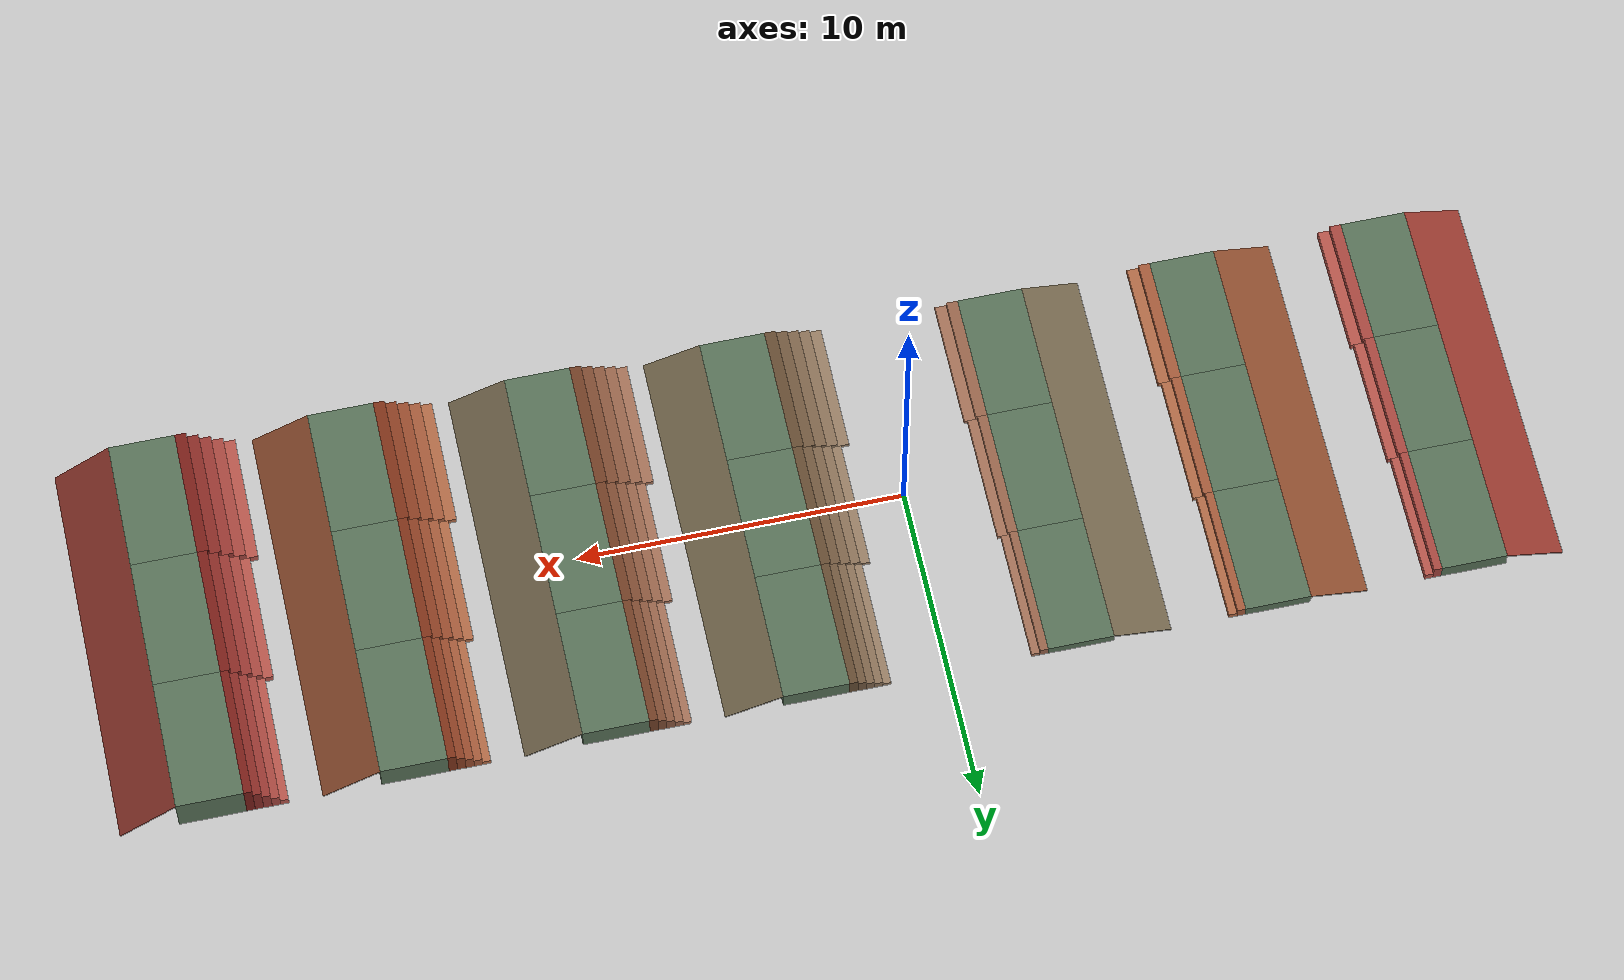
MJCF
<mujoco model="rough_terrain">

    <default>
        <default class="terrain">
            <geom contype="1" conaffinity="1" condim="3"
                  friction="1 0.01 0.01" group="0"/>
        </default>
    </default>

    <worldbody>
        <!-- ===== Rear two-step row 1: 0.15m rise per step ===== -->
        <body name="terrain_rear15_left" pos="-4.0 4.0 0">
            <geom name="stair_rear15_left_up_1" class="terrain"
                  type="box" size="0.125 2.0 0.075" pos="1.375 0 0.075"
                  rgba="0.65 0.45 0.35 1"/>
            <geom name="stair_rear15_left_up_2" class="terrain"
                  type="box" size="0.125 2.0 0.150" pos="1.125 0 0.150"
                  rgba="0.60 0.40 0.30 1"/>
            <geom name="stair_rear15_left_platform" class="terrain"
                  type="box" size="1.0 2.0 0.150" pos="0 0 0.150"
                  rgba="0.35 0.45 0.35 1"/>
        </body>

        <body name="terrain_rear15_mid" pos="-4.0 0 0">
            <geom name="stair_rear15_mid_up_1" class="terrain"
                  type="box" size="0.15 2.0 0.075" pos="1.45 0 0.075"
                  rgba="0.65 0.45 0.35 1"/>
            <geom name="stair_rear15_mid_up_2" class="terrain"
                  type="box" size="0.15 2.0 0.150" pos="1.15 0 0.150"
                  rgba="0.60 0.40 0.30 1"/>
            <geom name="stair_rear15_mid_platform" class="terrain"
                  type="box" size="1.0 2.0 0.150" pos="0 0 0.150"
                  rgba="0.35 0.45 0.35 1"/>
        </body>

        <body name="terrain_rear15_right" pos="-4.0 -4.0 0">
            <geom name="stair_rear15_right_up_1" class="terrain"
                  type="box" size="0.175 2.0 0.075" pos="1.525 0 0.075"
                  rgba="0.65 0.45 0.35 1"/>
            <geom name="stair_rear15_right_up_2" class="terrain"
                  type="box" size="0.175 2.0 0.150" pos="1.175 0 0.150"
                  rgba="0.60 0.40 0.30 1"/>
            <geom name="stair_rear15_right_platform" class="terrain"
                  type="box" size="1.0 2.0 0.150" pos="0 0 0.150"
                  rgba="0.35 0.45 0.35 1"/>
        </body>

        <body name="terrain_rear15_row_ramp" pos="-4.0 0 0">
            <geom name="ramp_rear15_row_down" class="terrain"
                  type="box" size="0.887764 6.0 0.025"
                  pos="-1.870776 0 0.125359"
                  quat="0.996399080 0 -0.084787220 0"
                  rgba="0.45 0.40 0.30 1"/>
        </body>

        <!-- ===== Rear two-step row 2: 0.18m rise per step ===== -->
        <body name="terrain_rear18_left" pos="-10.0 4.0 0">
            <geom name="stair_rear18_left_up_1" class="terrain"
                  type="box" size="0.125 2.0 0.090" pos="1.375 0 0.090"
                  rgba="0.70 0.42 0.28 1"/>
            <geom name="stair_rear18_left_up_2" class="terrain"
                  type="box" size="0.125 2.0 0.180" pos="1.125 0 0.180"
                  rgba="0.65 0.36 0.23 1"/>
            <geom name="stair_rear18_left_platform" class="terrain"
                  type="box" size="1.0 2.0 0.180" pos="0 0 0.180"
                  rgba="0.35 0.45 0.35 1"/>
        </body>

        <body name="terrain_rear18_mid" pos="-10.0 0 0">
            <geom name="stair_rear18_mid_up_1" class="terrain"
                  type="box" size="0.15 2.0 0.090" pos="1.45 0 0.090"
                  rgba="0.70 0.42 0.28 1"/>
            <geom name="stair_rear18_mid_up_2" class="terrain"
                  type="box" size="0.15 2.0 0.180" pos="1.15 0 0.180"
                  rgba="0.65 0.36 0.23 1"/>
            <geom name="stair_rear18_mid_platform" class="terrain"
                  type="box" size="1.0 2.0 0.180" pos="0 0 0.180"
                  rgba="0.35 0.45 0.35 1"/>
        </body>

        <body name="terrain_rear18_right" pos="-10.0 -4.0 0">
            <geom name="stair_rear18_right_up_1" class="terrain"
                  type="box" size="0.175 2.0 0.090" pos="1.525 0 0.090"
                  rgba="0.70 0.42 0.28 1"/>
            <geom name="stair_rear18_right_up_2" class="terrain"
                  type="box" size="0.175 2.0 0.180" pos="1.175 0 0.180"
                  rgba="0.65 0.36 0.23 1"/>
            <geom name="stair_rear18_right_platform" class="terrain"
                  type="box" size="1.0 2.0 0.180" pos="0 0 0.180"
                  rgba="0.35 0.45 0.35 1"/>
        </body>

        <body name="terrain_rear18_row_ramp" pos="-10.0 0 0">
            <geom name="ramp_rear18_row_down" class="terrain"
                  type="box" size="0.893322 6.0 0.025"
                  pos="-1.869963 0 0.155513"
                  quat="0.994859172 0 -0.101268098 0"
                  rgba="0.55 0.30 0.18 1"/>
        </body>

        <!-- ===== Rear two-step row 3: 0.25m rise per step ===== -->
        <body name="terrain_rear25_left" pos="-16.0 4.0 0">
            <geom name="stair_rear25_left_up_1" class="terrain"
                  type="box" size="0.125 2.0 0.125" pos="1.375 0 0.125"
                  rgba="0.72 0.34 0.30 1"/>
            <geom name="stair_rear25_left_up_2" class="terrain"
                  type="box" size="0.125 2.0 0.250" pos="1.125 0 0.250"
                  rgba="0.66 0.28 0.25 1"/>
            <geom name="stair_rear25_left_platform" class="terrain"
                  type="box" size="1.0 2.0 0.250" pos="0 0 0.250"
                  rgba="0.35 0.45 0.35 1"/>
        </body>

        <body name="terrain_rear25_mid" pos="-16.0 0 0">
            <geom name="stair_rear25_mid_up_1" class="terrain"
                  type="box" size="0.15 2.0 0.125" pos="1.45 0 0.125"
                  rgba="0.72 0.34 0.30 1"/>
            <geom name="stair_rear25_mid_up_2" class="terrain"
                  type="box" size="0.15 2.0 0.250" pos="1.15 0 0.250"
                  rgba="0.66 0.28 0.25 1"/>
            <geom name="stair_rear25_mid_platform" class="terrain"
                  type="box" size="1.0 2.0 0.250" pos="0 0 0.250"
                  rgba="0.35 0.45 0.35 1"/>
        </body>

        <body name="terrain_rear25_right" pos="-16.0 -4.0 0">
            <geom name="stair_rear25_right_up_1" class="terrain"
                  type="box" size="0.175 2.0 0.125" pos="1.525 0 0.125"
                  rgba="0.72 0.34 0.30 1"/>
            <geom name="stair_rear25_right_up_2" class="terrain"
                  type="box" size="0.175 2.0 0.250" pos="1.175 0 0.250"
                  rgba="0.66 0.28 0.25 1"/>
            <geom name="stair_rear25_right_platform" class="terrain"
                  type="box" size="1.0 2.0 0.250" pos="0 0 0.250"
                  rgba="0.35 0.45 0.35 1"/>
        </body>

        <body name="terrain_rear25_row_ramp" pos="-16.0 0 0">
            <geom name="ramp_rear25_row_down" class="terrain"
                  type="box" size="0.910014 6.0 0.025"
                  pos="-1.868132 0 0.225962"
                  quat="0.990334274 0 -0.138701212 0"
                  rgba="0.58 0.22 0.18 1"/>
        </body>

        <!-- ===== Middle row: 0.12m rise per step ===== -->
        <body name="terrain_mid_left" pos="4.0 4.0 0">
            <geom name="stair_mid_left_up_1" class="terrain"
                  type="box" size="0.125 2.0 0.06" pos="-2.125 0 0.06"
                  rgba="0.60 0.50 0.40 1"/>
            <geom name="stair_mid_left_up_2" class="terrain"
                  type="box" size="0.125 2.0 0.12" pos="-1.875 0 0.12"
                  rgba="0.55 0.45 0.35 1"/>
            <geom name="stair_mid_left_up_3" class="terrain"
                  type="box" size="0.125 2.0 0.18" pos="-1.625 0 0.18"
                  rgba="0.50 0.40 0.30 1"/>
            <geom name="stair_mid_left_up_4" class="terrain"
                  type="box" size="0.125 2.0 0.24" pos="-1.375 0 0.24"
                  rgba="0.45 0.35 0.25 1"/>
            <geom name="stair_mid_left_up_5" class="terrain"
                  type="box" size="0.125 2.0 0.30" pos="-1.125 0 0.30"
                  rgba="0.40 0.30 0.20 1"/>
            <geom name="stair_mid_left_platform" class="terrain"
                  type="box" size="1.0 2.0 0.30" pos="0 0 0.30"
                  rgba="0.35 0.45 0.35 1"/>
        </body>

        <body name="terrain_mid_mid" pos="4.0 0 0">
            <geom name="stair_mid_mid_up_1" class="terrain"
                  type="box" size="0.15 2.0 0.06" pos="-2.35 0 0.06"
                  rgba="0.60 0.50 0.40 1"/>
            <geom name="stair_mid_mid_up_2" class="terrain"
                  type="box" size="0.15 2.0 0.12" pos="-2.05 0 0.12"
                  rgba="0.55 0.45 0.35 1"/>
            <geom name="stair_mid_mid_up_3" class="terrain"
                  type="box" size="0.15 2.0 0.18" pos="-1.75 0 0.18"
                  rgba="0.50 0.40 0.30 1"/>
            <geom name="stair_mid_mid_up_4" class="terrain"
                  type="box" size="0.15 2.0 0.24" pos="-1.45 0 0.24"
                  rgba="0.45 0.35 0.25 1"/>
            <geom name="stair_mid_mid_up_5" class="terrain"
                  type="box" size="0.15 2.0 0.30" pos="-1.15 0 0.30"
                  rgba="0.40 0.30 0.20 1"/>
            <geom name="stair_mid_mid_platform" class="terrain"
                  type="box" size="1.0 2.0 0.30" pos="0 0 0.30"
                  rgba="0.35 0.45 0.35 1"/>
        </body>

        <body name="terrain_mid_right" pos="4.0 -4.0 0">
            <geom name="stair_mid_right_up_1" class="terrain"
                  type="box" size="0.175 2.0 0.06" pos="-2.575 0 0.06"
                  rgba="0.60 0.50 0.40 1"/>
            <geom name="stair_mid_right_up_2" class="terrain"
                  type="box" size="0.175 2.0 0.12" pos="-2.225 0 0.12"
                  rgba="0.55 0.45 0.35 1"/>
            <geom name="stair_mid_right_up_3" class="terrain"
                  type="box" size="0.175 2.0 0.18" pos="-1.875 0 0.18"
                  rgba="0.50 0.40 0.30 1"/>
            <geom name="stair_mid_right_up_4" class="terrain"
                  type="box" size="0.175 2.0 0.24" pos="-1.525 0 0.24"
                  rgba="0.45 0.35 0.25 1"/>
            <geom name="stair_mid_right_up_5" class="terrain"
                  type="box" size="0.175 2.0 0.30" pos="-1.175 0 0.30"
                  rgba="0.40 0.30 0.20 1"/>
            <geom name="stair_mid_right_platform" class="terrain"
                  type="box" size="1.0 2.0 0.30" pos="0 0 0.30"
                  rgba="0.35 0.45 0.35 1"/>
        </body>

        <body name="terrain_mid_row_ramp" pos="4.0 0 0">
            <geom name="ramp_mid_row_down" class="terrain"
                  type="box" size="0.925000 6.0 0.025"
                  pos="1.866892 0 0.276351"
                  quat="0.986393924 0 0.164398987 0"
                  rgba="0.45 0.40 0.30 1"/>
        </body>

        <!-- ===== Front row: 0.15m rise per step ===== -->
        <body name="terrain_front_left" pos="10.0 4.0 0">
            <geom name="stair_front_left_up_1" class="terrain"
                  type="box" size="0.125 2.0 0.075" pos="-2.125 0 0.075"
                  rgba="0.65 0.45 0.35 1"/>
            <geom name="stair_front_left_up_2" class="terrain"
                  type="box" size="0.125 2.0 0.150" pos="-1.875 0 0.150"
                  rgba="0.60 0.40 0.30 1"/>
            <geom name="stair_front_left_up_3" class="terrain"
                  type="box" size="0.125 2.0 0.225" pos="-1.625 0 0.225"
                  rgba="0.55 0.35 0.25 1"/>
            <geom name="stair_front_left_up_4" class="terrain"
                  type="box" size="0.125 2.0 0.300" pos="-1.375 0 0.300"
                  rgba="0.50 0.30 0.20 1"/>
            <geom name="stair_front_left_up_5" class="terrain"
                  type="box" size="0.125 2.0 0.375" pos="-1.125 0 0.375"
                  rgba="0.45 0.25 0.15 1"/>
            <geom name="stair_front_left_platform" class="terrain"
                  type="box" size="1.0 2.0 0.375" pos="0 0 0.375"
                  rgba="0.35 0.45 0.35 1"/>
        </body>

        <body name="terrain_front_mid" pos="10.0 0 0">
            <geom name="stair_front_mid_up_1" class="terrain"
                  type="box" size="0.15 2.0 0.075" pos="-2.35 0 0.075"
                  rgba="0.65 0.45 0.35 1"/>
            <geom name="stair_front_mid_up_2" class="terrain"
                  type="box" size="0.15 2.0 0.150" pos="-2.05 0 0.150"
                  rgba="0.60 0.40 0.30 1"/>
            <geom name="stair_front_mid_up_3" class="terrain"
                  type="box" size="0.15 2.0 0.225" pos="-1.75 0 0.225"
                  rgba="0.55 0.35 0.25 1"/>
            <geom name="stair_front_mid_up_4" class="terrain"
                  type="box" size="0.15 2.0 0.300" pos="-1.45 0 0.300"
                  rgba="0.50 0.30 0.20 1"/>
            <geom name="stair_front_mid_up_5" class="terrain"
                  type="box" size="0.15 2.0 0.375" pos="-1.15 0 0.375"
                  rgba="0.45 0.25 0.15 1"/>
            <geom name="stair_front_mid_platform" class="terrain"
                  type="box" size="1.0 2.0 0.375" pos="0 0 0.375"
                  rgba="0.35 0.45 0.35 1"/>
        </body>

        <body name="terrain_front_right" pos="10.0 -4.0 0">
            <geom name="stair_front_right_up_1" class="terrain"
                  type="box" size="0.175 2.0 0.075" pos="-2.575 0 0.075"
                  rgba="0.65 0.45 0.35 1"/>
            <geom name="stair_front_right_up_2" class="terrain"
                  type="box" size="0.175 2.0 0.150" pos="-2.225 0 0.150"
                  rgba="0.60 0.40 0.30 1"/>
            <geom name="stair_front_right_up_3" class="terrain"
                  type="box" size="0.175 2.0 0.225" pos="-1.875 0 0.225"
                  rgba="0.55 0.35 0.25 1"/>
            <geom name="stair_front_right_up_4" class="terrain"
                  type="box" size="0.175 2.0 0.300" pos="-1.525 0 0.300"
                  rgba="0.50 0.30 0.20 1"/>
            <geom name="stair_front_right_up_5" class="terrain"
                  type="box" size="0.175 2.0 0.375" pos="-1.175 0 0.375"
                  rgba="0.45 0.25 0.15 1"/>
            <geom name="stair_front_right_platform" class="terrain"
                  type="box" size="1.0 2.0 0.375" pos="0 0 0.375"
                  rgba="0.35 0.45 0.35 1"/>
        </body>

        <body name="terrain_front_row_ramp" pos="10.0 0 0">
            <geom name="ramp_front_row_down" class="terrain"
                  type="box" size="0.951972 6.0 0.025"
                  pos="1.865152 0 0.352021"
                  quat="0.979577723 0 0.201065872 0"
                  rgba="0.45 0.40 0.30 1"/>
        </body>
        <!-- ===== High row 1: 0.18m rise per step ===== -->
        <body name="terrain_high18_left" pos="16.0 4.0 0">
            <geom name="stair_high18_left_up_1" class="terrain"
                  type="box" size="0.125 2.0 0.090" pos="-2.125 0 0.090"
                  rgba="0.70 0.42 0.28 1"/>
            <geom name="stair_high18_left_up_2" class="terrain"
                  type="box" size="0.125 2.0 0.180" pos="-1.875 0 0.180"
                  rgba="0.65 0.36 0.23 1"/>
            <geom name="stair_high18_left_up_3" class="terrain"
                  type="box" size="0.125 2.0 0.270" pos="-1.625 0 0.270"
                  rgba="0.60 0.30 0.18 1"/>
            <geom name="stair_high18_left_up_4" class="terrain"
                  type="box" size="0.125 2.0 0.360" pos="-1.375 0 0.360"
                  rgba="0.55 0.25 0.14 1"/>
            <geom name="stair_high18_left_up_5" class="terrain"
                  type="box" size="0.125 2.0 0.450" pos="-1.125 0 0.450"
                  rgba="0.50 0.20 0.10 1"/>
            <geom name="stair_high18_left_platform" class="terrain"
                  type="box" size="1.0 2.0 0.450" pos="0 0 0.450"
                  rgba="0.35 0.45 0.35 1"/>
        </body>

        <body name="terrain_high18_mid" pos="16.0 0.0 0">
            <geom name="stair_high18_mid_up_1" class="terrain"
                  type="box" size="0.15 2.0 0.090" pos="-2.35 0 0.090"
                  rgba="0.70 0.42 0.28 1"/>
            <geom name="stair_high18_mid_up_2" class="terrain"
                  type="box" size="0.15 2.0 0.180" pos="-2.05 0 0.180"
                  rgba="0.65 0.36 0.23 1"/>
            <geom name="stair_high18_mid_up_3" class="terrain"
                  type="box" size="0.15 2.0 0.270" pos="-1.75 0 0.270"
                  rgba="0.60 0.30 0.18 1"/>
            <geom name="stair_high18_mid_up_4" class="terrain"
                  type="box" size="0.15 2.0 0.360" pos="-1.45 0 0.360"
                  rgba="0.55 0.25 0.14 1"/>
            <geom name="stair_high18_mid_up_5" class="terrain"
                  type="box" size="0.15 2.0 0.450" pos="-1.15 0 0.450"
                  rgba="0.50 0.20 0.10 1"/>
            <geom name="stair_high18_mid_platform" class="terrain"
                  type="box" size="1.0 2.0 0.450" pos="0 0 0.450"
                  rgba="0.35 0.45 0.35 1"/>
        </body>

        <body name="terrain_high18_right" pos="16.0 -4.0 0">
            <geom name="stair_high18_right_up_1" class="terrain"
                  type="box" size="0.175 2.0 0.090" pos="-2.575 0 0.090"
                  rgba="0.70 0.42 0.28 1"/>
            <geom name="stair_high18_right_up_2" class="terrain"
                  type="box" size="0.175 2.0 0.180" pos="-2.225 0 0.180"
                  rgba="0.65 0.36 0.23 1"/>
            <geom name="stair_high18_right_up_3" class="terrain"
                  type="box" size="0.175 2.0 0.270" pos="-1.875 0 0.270"
                  rgba="0.60 0.30 0.18 1"/>
            <geom name="stair_high18_right_up_4" class="terrain"
                  type="box" size="0.175 2.0 0.360" pos="-1.525 0 0.360"
                  rgba="0.55 0.25 0.14 1"/>
            <geom name="stair_high18_right_up_5" class="terrain"
                  type="box" size="0.175 2.0 0.450" pos="-1.175 0 0.450"
                  rgba="0.50 0.20 0.10 1"/>
            <geom name="stair_high18_right_platform" class="terrain"
                  type="box" size="1.0 2.0 0.450" pos="0 0 0.450"
                  rgba="0.35 0.45 0.35 1"/>
        </body>

        <body name="terrain_high18_row_ramp" pos="16.0 0 0">
            <geom name="ramp_high18_row_down" class="terrain"
                  type="box" size="0.983933 6.0 0.025"
                  pos="1.863566 0 0.427768"
                  quat="0.971927930 0 0.235278768 0"
                  rgba="0.55 0.30 0.18 1"/>
        </body>

        <!-- ===== High row 2: 0.25m rise per step ===== -->
        <body name="terrain_high25_left" pos="22.0 4.0 0">
            <geom name="stair_high25_left_up_1" class="terrain"
                  type="box" size="0.125 2.0 0.125" pos="-2.125 0 0.125"
                  rgba="0.72 0.34 0.30 1"/>
            <geom name="stair_high25_left_up_2" class="terrain"
                  type="box" size="0.125 2.0 0.250" pos="-1.875 0 0.250"
                  rgba="0.66 0.28 0.25 1"/>
            <geom name="stair_high25_left_up_3" class="terrain"
                  type="box" size="0.125 2.0 0.375" pos="-1.625 0 0.375"
                  rgba="0.60 0.22 0.20 1"/>
            <geom name="stair_high25_left_up_4" class="terrain"
                  type="box" size="0.125 2.0 0.500" pos="-1.375 0 0.500"
                  rgba="0.54 0.17 0.15 1"/>
            <geom name="stair_high25_left_up_5" class="terrain"
                  type="box" size="0.125 2.0 0.625" pos="-1.125 0 0.625"
                  rgba="0.48 0.12 0.10 1"/>
            <geom name="stair_high25_left_platform" class="terrain"
                  type="box" size="1.0 2.0 0.625" pos="0 0 0.625"
                  rgba="0.35 0.45 0.35 1"/>
        </body>

        <body name="terrain_high25_mid" pos="22.0 0.0 0">
            <geom name="stair_high25_mid_up_1" class="terrain"
                  type="box" size="0.15 2.0 0.125" pos="-2.35 0 0.125"
                  rgba="0.72 0.34 0.30 1"/>
            <geom name="stair_high25_mid_up_2" class="terrain"
                  type="box" size="0.15 2.0 0.250" pos="-2.05 0 0.250"
                  rgba="0.66 0.28 0.25 1"/>
            <geom name="stair_high25_mid_up_3" class="terrain"
                  type="box" size="0.15 2.0 0.375" pos="-1.75 0 0.375"
                  rgba="0.60 0.22 0.20 1"/>
            <geom name="stair_high25_mid_up_4" class="terrain"
                  type="box" size="0.15 2.0 0.500" pos="-1.45 0 0.500"
                  rgba="0.54 0.17 0.15 1"/>
            <geom name="stair_high25_mid_up_5" class="terrain"
                  type="box" size="0.15 2.0 0.625" pos="-1.15 0 0.625"
                  rgba="0.48 0.12 0.10 1"/>
            <geom name="stair_high25_mid_platform" class="terrain"
                  type="box" size="1.0 2.0 0.625" pos="0 0 0.625"
                  rgba="0.35 0.45 0.35 1"/>
        </body>

        <body name="terrain_high25_right" pos="22.0 -4.0 0">
            <geom name="stair_high25_right_up_1" class="terrain"
                  type="box" size="0.175 2.0 0.125" pos="-2.575 0 0.125"
                  rgba="0.72 0.34 0.30 1"/>
            <geom name="stair_high25_right_up_2" class="terrain"
                  type="box" size="0.175 2.0 0.250" pos="-2.225 0 0.250"
                  rgba="0.66 0.28 0.25 1"/>
            <geom name="stair_high25_right_up_3" class="terrain"
                  type="box" size="0.175 2.0 0.375" pos="-1.875 0 0.375"
                  rgba="0.60 0.22 0.20 1"/>
            <geom name="stair_high25_right_up_4" class="terrain"
                  type="box" size="0.175 2.0 0.500" pos="-1.525 0 0.500"
                  rgba="0.54 0.17 0.15 1"/>
            <geom name="stair_high25_right_up_5" class="terrain"
                  type="box" size="0.175 2.0 0.625" pos="-1.175 0 0.625"
                  rgba="0.48 0.12 0.10 1"/>
            <geom name="stair_high25_right_platform" class="terrain"
                  type="box" size="1.0 2.0 0.625" pos="0 0 0.625"
                  rgba="0.35 0.45 0.35 1"/>
        </body>

        <body name="terrain_high25_row_ramp" pos="22.0 0 0">
            <geom name="ramp_high25_row_down" class="terrain"
                  type="box" size="1.075291 6.0 0.025"
                  pos="1.860469 0 0.604657"
                  quat="0.952295509 0 0.305177431 0"
                  rgba="0.58 0.22 0.18 1"/>
        </body>
    </worldbody>

</mujoco>
